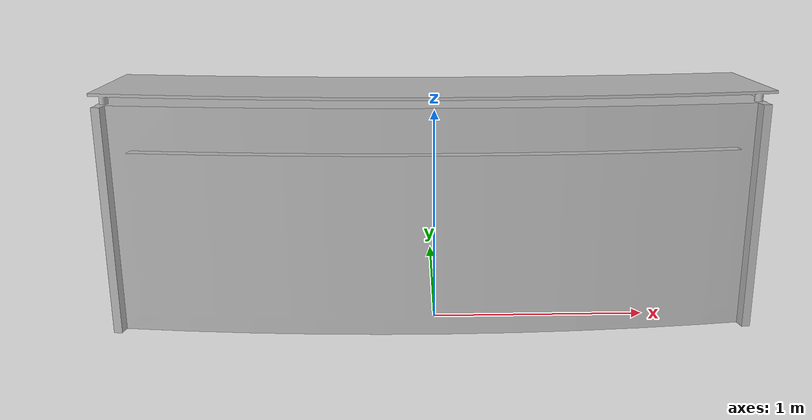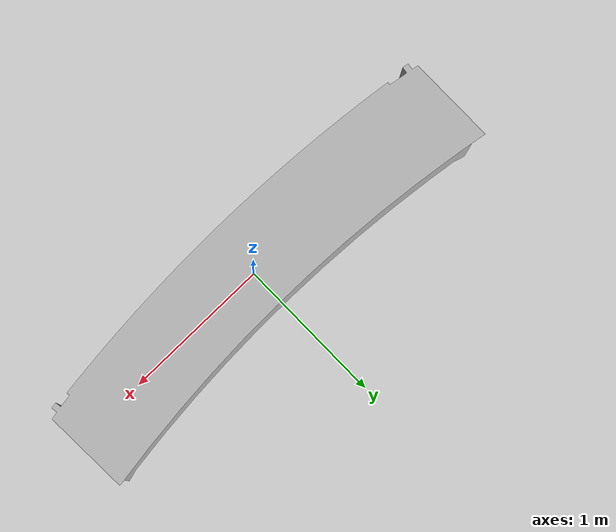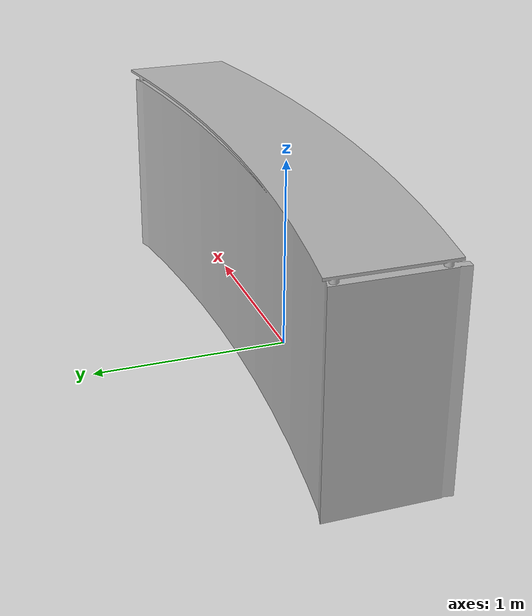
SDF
<?xml version='1.0'?>
<sdf version='1.7'>
  <model name='reception_desk'>
    <link name='link_0'>
      <pose>0 0 0 0 -0 0</pose>
      <gravity>1</gravity>
      <visual name='visual'>
        <pose>0 0 0 0 -0 0</pose>
        <geometry>
          <mesh>
            <uri>model://reception_desk/meshes/reception_desk.dae</uri>
            <scale>1.3 1.3 1.3</scale>
          </mesh>
        </geometry>
        <transparency>0</transparency>
        <cast_shadows>0</cast_shadows>
      </visual>
      <collision name='collision'>
        <pose>0 0 0 0 0 0</pose>
        <geometry>
          <mesh>
            <uri>model://reception_desk/meshes/reception_desk.dae</uri>
            <scale>1.3 1.3 1.3</scale>
          </mesh>
        </geometry>
      </collision>
    </link>
    <static>0</static>
  </model>
</sdf>
